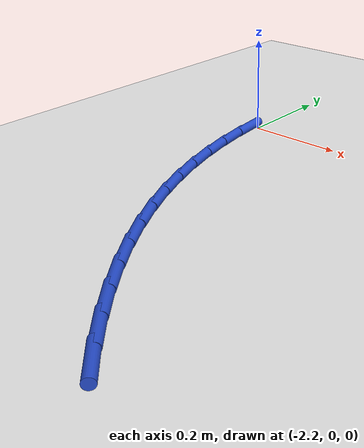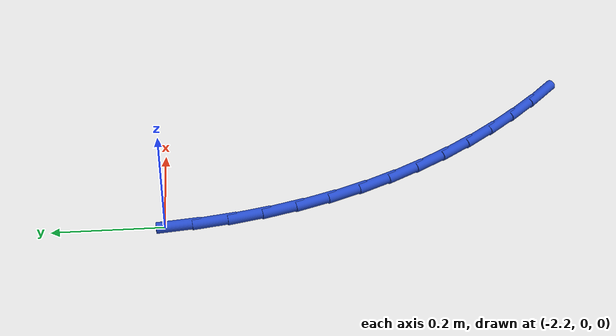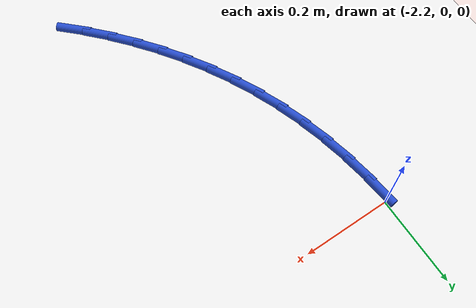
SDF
<sdf version="1.6">
 <world name="default">
  <model name="ground_plane">
   <static>1</static>
   <link name="link">
    <collision name="collision">
     <geometry><plane><normal>0 0 1</normal><size>100 100</size></plane></geometry>
     <surface><friction><ode><mu>100</mu><mu2>50</mu2></ode></friction></surface>
    </collision>
    <visual name="visual">
     <cast_shadows>0</cast_shadows>
     <geometry><plane><normal>0 0 1</normal><size>100 100</size></plane></geometry>
     <material>
      <script><uri>file://media/materials/scripts/gazebo.material</uri><name>Gazebo/WhiteGlow</name></script>
     </material>
    </visual>
   </link>
  </model>
  <model name="line">
   <link name="link_56">
    <pose>-2.2059642663720855 -0.02465836013130908 0.01 0 1.57 -1.4567054400051511</pose>
    <collision name="collision">
     <geometry><cylinder><radius>0.01</radius><length>0.08</length></cylinder></geometry>
    </collision>
    <visual name="visual">
     <material>
      <script><name>Gazebo/Blue</name><uri>file://media/materials/scripts/gazebo.material</uri></script>
     </material>
     <geometry><cylinder><radius>0.01</radius><length>0.08</length></cylinder></geometry>
    </visual>
   </link>
   <link name="link_57">
    <pose>-2.1988139775034887 -0.0870580631407546 0.01 0 1.57 -1.40115192180759</pose>
    <collision name="collision">
     <geometry><cylinder><radius>0.01</radius><length>0.08</length></cylinder></geometry>
    </collision>
    <visual name="visual">
     <material>
      <script><name>Gazebo/Blue</name><uri>file://media/materials/scripts/gazebo.material</uri></script>
     </material>
     <geometry><cylinder><radius>0.01</radius><length>0.08</length></cylinder></geometry>
    </visual>
   </link>
   <link name="link_58">
    <pose>-2.188234154995285 -0.14882334340390105 0.01 0 1.57 -1.345051032894577</pose>
    <collision name="collision">
     <geometry><cylinder><radius>0.01</radius><length>0.08</length></cylinder></geometry>
    </collision>
    <visual name="visual">
     <material>
      <script><name>Gazebo/Blue</name><uri>file://media/materials/scripts/gazebo.material</uri></script>
     </material>
     <geometry><cylinder><radius>0.01</radius><length>0.08</length></cylinder></geometry>
    </visual>
   </link>
   <link name="link_59">
    <pose>-2.1742492452076974 -0.20971735873693942 0.01 0 1.57 -1.2881125471490111</pose>
    <collision name="collision">
     <geometry><cylinder><radius>0.01</radius><length>0.08</length></cylinder></geometry>
    </collision>
    <visual name="visual">
     <material>
      <script><name>Gazebo/Blue</name><uri>file://media/materials/scripts/gazebo.material</uri></script>
     </material>
     <geometry><cylinder><radius>0.01</radius><length>0.08</length></cylinder></geometry>
    </visual>
   </link>
   <link name="link_60">
    <pose>-2.1568836945009506 -0.2695032669560581 0.01 0 1.57 -1.2300509694966815</pose>
    <collision name="collision">
     <geometry><cylinder><radius>0.01</radius><length>0.08</length></cylinder></geometry>
    </collision>
    <visual name="visual">
     <material>
      <script><name>Gazebo/Blue</name><uri>file://media/materials/scripts/gazebo.material</uri></script>
     </material>
     <geometry><cylinder><radius>0.01</radius><length>0.08</length></cylinder></geometry>
    </visual>
   </link>
   <link name="link_61">
    <pose>-2.1361619492352673 -0.3279442258774482 0.01 0 1.57 -1.1708779905800708</pose>
    <collision name="collision">
     <geometry><cylinder><radius>0.01</radius><length>0.08</length></cylinder></geometry>
    </collision>
    <visual name="visual">
     <material>
      <script><name>Gazebo/Blue</name><uri>file://media/materials/scripts/gazebo.material</uri></script>
     </material>
     <geometry><cylinder><radius>0.01</radius><length>0.08</length></cylinder></geometry>
    </visual>
   </link>
   <link name="link_62">
    <pose>-2.1121199985999035 -0.3848217359609971 0.01 0 1.57 -1.112607315226734</pose>
    <collision name="collision">
     <geometry><cylinder><radius>0.01</radius><length>0.08</length></cylinder></geometry>
    </collision>
    <visual name="visual">
     <material>
      <script><name>Gazebo/Blue</name><uri>file://media/materials/scripts/gazebo.material</uri></script>
     </material>
     <geometry><cylinder><radius>0.01</radius><length>0.08</length></cylinder></geometry>
    </visual>
   </link>
   <link name="link_63">
    <pose>-2.0848797734530162 -0.44005386708187527 0.01 0 1.57 -1.0563291202976997</pose>
    <collision name="collision">
     <geometry><cylinder><radius>0.01</radius><length>0.08</length></cylinder></geometry>
    </collision>
    <visual name="visual">
     <material>
      <script><name>Gazebo/Blue</name><uri>file://media/materials/scripts/gazebo.material</uri></script>
     </material>
     <geometry><cylinder><radius>0.01</radius><length>0.08</length></cylinder></geometry>
    </visual>
   </link>
   <link name="link_64">
    <pose>-2.054601973039367 -0.493620295737013 0.01 0 1.57 -1.002155657031281</pose>
    <collision name="collision">
     <geometry><cylinder><radius>0.01</radius><length>0.08</length></cylinder></geometry>
    </collision>
    <visual name="visual">
     <material>
      <script><name>Gazebo/Blue</name><uri>file://media/materials/scripts/gazebo.material</uri></script>
     </material>
     <geometry><cylinder><radius>0.01</radius><length>0.08</length></cylinder></geometry>
    </visual>
   </link>
   <link name="link_65">
    <pose>-2.02144748487512 -0.5455009976043562 0.01 0 1.57 -0.9501373519710464</pose>
    <collision name="collision">
     <geometry><cylinder><radius>0.01</radius><length>0.08</length></cylinder></geometry>
    </collision>
    <visual name="visual">
     <material>
      <script><name>Gazebo/Blue</name><uri>file://media/materials/scripts/gazebo.material</uri></script>
     </material>
     <geometry><cylinder><radius>0.01</radius><length>0.08</length></cylinder></geometry>
    </visual>
   </link>
   <link name="link_66">
    <pose>-1.9855771964764375 -0.5956759483618509 0.01 0 1.57 -0.900274856238542</pose>
    <collision name="collision">
     <geometry><cylinder><radius>0.01</radius><length>0.08</length></cylinder></geometry>
    </collision>
    <visual name="visual">
     <material>
      <script><name>Gazebo/Blue</name><uri>file://media/materials/scripts/gazebo.material</uri></script>
     </material>
     <geometry><cylinder><radius>0.01</radius><length>0.08</length></cylinder></geometry>
    </visual>
   </link>
   <link name="link_67">
    <pose>-1.9471519953594865 -0.6441251236874411 0.01 0 1.57 -0.8525272006249037</pose>
    <collision name="collision">
     <geometry><cylinder><radius>0.01</radius><length>0.08</length></cylinder></geometry>
    </collision>
    <visual name="visual">
     <material>
      <script><name>Gazebo/Blue</name><uri>file://media/materials/scripts/gazebo.material</uri></script>
     </material>
     <geometry><cylinder><radius>0.01</radius><length>0.08</length></cylinder></geometry>
    </visual>
   </link>
   <link name="link_68">
    <pose>-1.9063327690404295 -0.6908284992590729 0.01 0 1.57 -0.8068199263949436</pose>
    <collision name="collision">
     <geometry><cylinder><radius>0.01</radius><length>0.08</length></cylinder></geometry>
    </collision>
    <visual name="visual">
     <material>
      <script><name>Gazebo/Blue</name><uri>file://media/materials/scripts/gazebo.material</uri></script>
     </material>
     <geometry><cylinder><radius>0.01</radius><length>0.08</length></cylinder></geometry>
    </visual>
   </link>
   <link name="link_69">
    <pose>-1.8632804050354328 -0.7357660507546909 0.01 0 1.57 -0.7630526153092614</pose>
    <collision name="collision">
     <geometry><cylinder><radius>0.01</radius><length>0.08</length></cylinder></geometry>
    </collision>
    <visual name="visual">
     <material>
      <script><name>Gazebo/Blue</name><uri>file://media/materials/scripts/gazebo.material</uri></script>
     </material>
     <geometry><cylinder><radius>0.01</radius><length>0.08</length></cylinder></geometry>
    </visual>
   </link>
  </model>
 </world>
</sdf>
